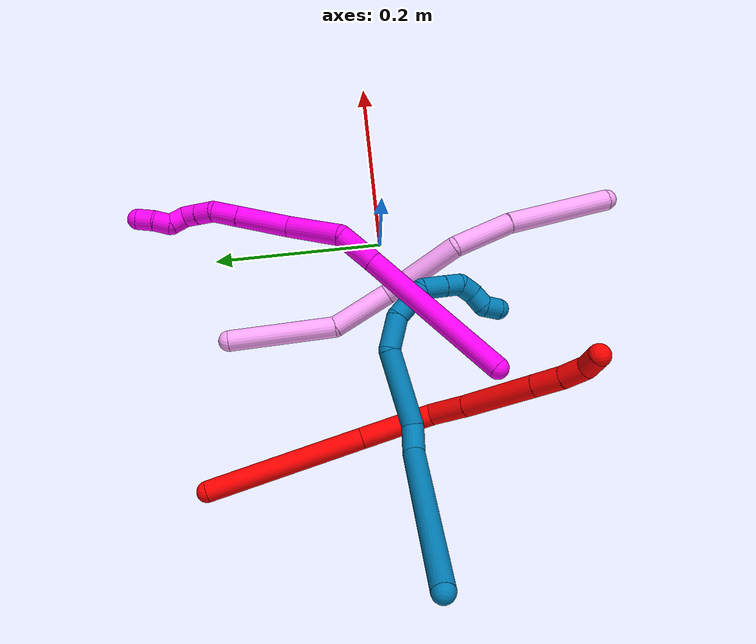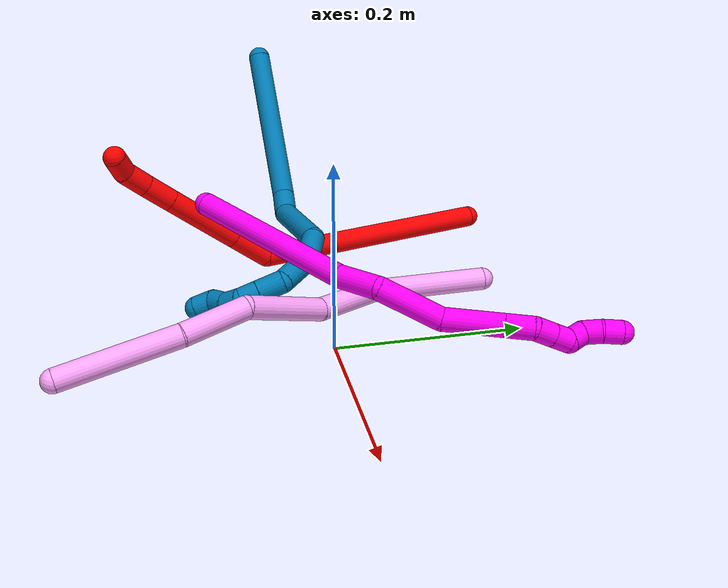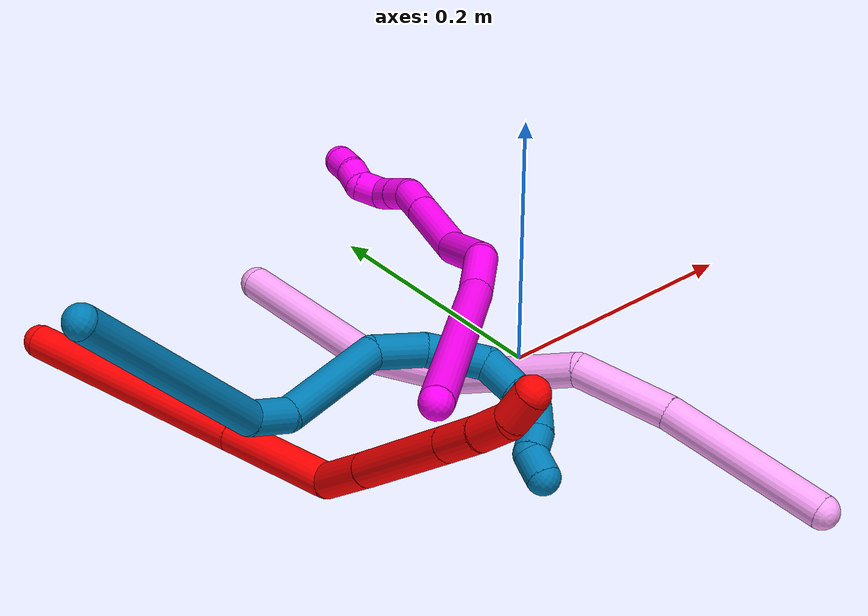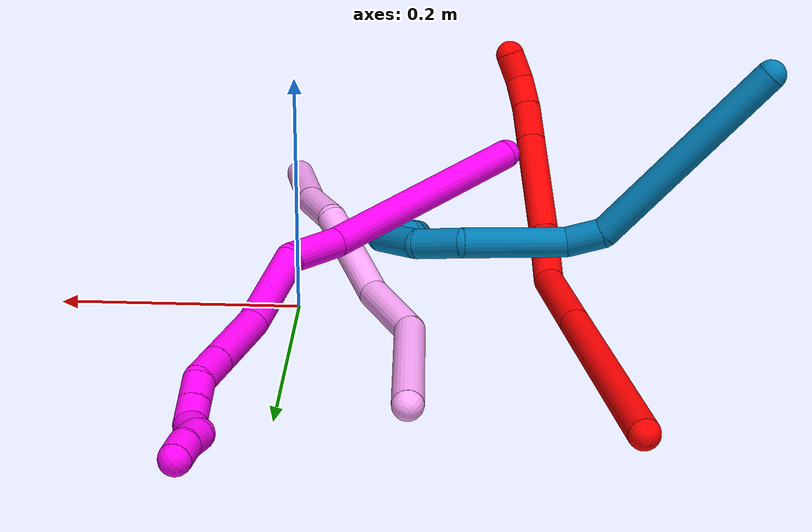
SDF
<sdf version="1.7">
 <world name="default">
  <model name="2">
   <static>0</static>
   <link name="2">
    <collision name="collision-cylinder-e_1_1_4">
     <pose>0.01626 -0.006768 -0.091686 3.06791 0.175052 2.34627</pose>
     <geometry><cylinder><radius>0.0125</radius><length>0.186725</length></cylinder></geometry>
     <surface>
      <friction><ode><mu>1.16</mu><mu2>1.16</mu2><slip1>0</slip1><slip2>0</slip2></ode></friction>
      <contact><ode><kp>1e+06</kp><kd>1</kd><max_vel>0</max_vel><min_depth>0.001</min_depth></ode></contact>
     </surface>
    </collision>
    <visual name="visual-cylinder-e_1_1_4">
     <pose>0.01626 -0.006768 -0.091686 3.06791 0.175052 2.34627</pose>
     <geometry><cylinder><radius>0.0125</radius><length>0.186725</length></cylinder></geometry>
     <material><ambient>1 0 0 1</ambient></material>
    </visual>
    <collision name="collision-cylinder-e_2_4_5">
     <pose>0.039907 -0.016698 -0.225477 3.06665 0.173208 2.32635</pose>
     <geometry><cylinder><radius>0.0125</radius><length>0.08573</length></cylinder></geometry>
     <surface>
      <friction><ode><mu>1.16</mu><mu2>1.16</mu2><slip1>0</slip1><slip2>0</slip2></ode></friction>
      <contact><ode><kp>1e+06</kp><kd>1</kd><max_vel>0</max_vel><min_depth>0.001</min_depth></ode></contact>
     </surface>
    </collision>
    <visual name="visual-cylinder-e_2_4_5">
     <pose>0.039907 -0.016698 -0.225477 3.06665 0.173208 2.32635</pose>
     <geometry><cylinder><radius>0.0125</radius><length>0.08573</length></cylinder></geometry>
     <material><ambient>1 0 0 1</ambient></material>
    </visual>
    <collision name="collision-cylinder-e_3_5_6">
     <pose>0.052917 -0.03618 -0.284648 2.37848 0.233735 0.56934</pose>
     <geometry><cylinder><radius>0.0125</radius><length>0.048547</length></cylinder></geometry>
     <surface>
      <friction><ode><mu>1.16</mu><mu2>1.16</mu2><slip1>0</slip1><slip2>0</slip2></ode></friction>
      <contact><ode><kp>1e+06</kp><kd>1</kd><max_vel>0</max_vel><min_depth>0.001</min_depth></ode></contact>
     </surface>
    </collision>
    <visual name="visual-cylinder-e_3_5_6">
     <pose>0.052917 -0.03618 -0.284648 2.37848 0.233735 0.56934</pose>
     <geometry><cylinder><radius>0.0125</radius><length>0.048547</length></cylinder></geometry>
     <material><ambient>1 0 0 1</ambient></material>
    </visual>
    <collision name="collision-cylinder-e_4_6_7">
     <pose>0.070531 -0.082741 -0.333146 2.37552 0.268318 0.646439</pose>
     <geometry><cylinder><radius>0.0125</radius><length>0.090472</length></cylinder></geometry>
     <surface>
      <friction><ode><mu>1.16</mu><mu2>1.16</mu2><slip1>0</slip1><slip2>0</slip2></ode></friction>
      <contact><ode><kp>1e+06</kp><kd>1</kd><max_vel>0</max_vel><min_depth>0.001</min_depth></ode></contact>
     </surface>
    </collision>
    <visual name="visual-cylinder-e_4_6_7">
     <pose>0.070531 -0.082741 -0.333146 2.37552 0.268318 0.646439</pose>
     <geometry><cylinder><radius>0.0125</radius><length>0.090472</length></cylinder></geometry>
     <material><ambient>1 0 0 1</ambient></material>
    </visual>
    <collision name="collision-cylinder-e_5_7_8">
     <pose>0.087124 -0.124623 -0.376558 2.3705 0.268718 0.643004</pose>
     <geometry><cylinder><radius>0.0125</radius><length>0.034652</length></cylinder></geometry>
     <surface>
      <friction><ode><mu>1.16</mu><mu2>1.16</mu2><slip1>0</slip1><slip2>0</slip2></ode></friction>
      <contact><ode><kp>1e+06</kp><kd>1</kd><max_vel>0</max_vel><min_depth>0.001</min_depth></ode></contact>
     </surface>
    </collision>
    <visual name="visual-cylinder-e_5_7_8">
     <pose>0.087124 -0.124623 -0.376558 2.3705 0.268718 0.643004</pose>
     <geometry><cylinder><radius>0.0125</radius><length>0.034652</length></cylinder></geometry>
     <material><ambient>1 0 0 1</ambient></material>
    </visual>
    <collision name="collision-cylinder-e_6_8_9">
     <pose>0.097031 -0.145882 -0.39799 2.34756 0.374961 0.849797</pose>
     <geometry><cylinder><radius>0.0125</radius><length>0.028984</length></cylinder></geometry>
     <surface>
      <friction><ode><mu>1.16</mu><mu2>1.16</mu2><slip1>0</slip1><slip2>0</slip2></ode></friction>
      <contact><ode><kp>1e+06</kp><kd>1</kd><max_vel>0</max_vel><min_depth>0.001</min_depth></ode></contact>
     </surface>
    </collision>
    <visual name="visual-cylinder-e_6_8_9">
     <pose>0.097031 -0.145882 -0.39799 2.34756 0.374961 0.849797</pose>
     <geometry><cylinder><radius>0.0125</radius><length>0.028984</length></cylinder></geometry>
     <material><ambient>1 0 0 1</ambient></material>
    </visual>
    <collision name="collision-cylinder-e_7_9_2">
     <pose>0.109513 -0.165003 -0.411062 1.9347 0.61435 0.862707</pose>
     <geometry><cylinder><radius>0.0125</radius><length>0.02489</length></cylinder></geometry>
     <surface>
      <friction><ode><mu>1.16</mu><mu2>1.16</mu2><slip1>0</slip1><slip2>0</slip2></ode></friction>
      <contact><ode><kp>1e+06</kp><kd>1</kd><max_vel>0</max_vel><min_depth>0.001</min_depth></ode></contact>
     </surface>
    </collision>
    <visual name="visual-cylinder-e_7_9_2">
     <pose>0.109513 -0.165003 -0.411062 1.9347 0.61435 0.862707</pose>
     <geometry><cylinder><radius>0.0125</radius><length>0.02489</length></cylinder></geometry>
     <material><ambient>1 0 0 1</ambient></material>
    </visual>
    <collision name="collision-sphere-2">
     <pose>0.116686 -0.174506 -0.414681 0 -0 0</pose>
     <geometry><sphere><radius>0.0125</radius></sphere></geometry>
     <surface>
      <friction><ode><mu>1.16</mu><mu2>1.16</mu2><slip1>0</slip1><slip2>0</slip2></ode></friction>
      <contact><ode><kp>1e+06</kp><kd>1</kd><max_vel>0</max_vel><min_depth>0.001</min_depth></ode></contact>
     </surface>
    </collision>
    <visual name="visual-sphere-2">
     <pose>0.116686 -0.174506 -0.414681 0 -0 0</pose>
     <geometry><sphere><radius>0.0125</radius></sphere></geometry>
     <material><ambient>1 0 0 1</ambient></material>
    </visual>
    <collision name="collision-sphere-9">
     <pose>0.102339 -0.155499 -0.407442 0 -0 0</pose>
     <geometry><sphere><radius>0.0125</radius></sphere></geometry>
     <surface>
      <friction><ode><mu>1.16</mu><mu2>1.16</mu2><slip1>0</slip1><slip2>0</slip2></ode></friction>
      <contact><ode><kp>1e+06</kp><kd>1</kd><max_vel>0</max_vel><min_depth>0.001</min_depth></ode></contact>
     </surface>
    </collision>
    <visual name="visual-sphere-9">
     <pose>0.102339 -0.155499 -0.407442 0 -0 0</pose>
     <geometry><sphere><radius>0.0125</radius></sphere></geometry>
     <material><ambient>1 0 0 1</ambient></material>
    </visual>
    <collision name="collision-sphere-4">
     <pose>0.03252 -0.013536 -0.183372 0 -0 0</pose>
     <geometry><sphere><radius>0.0125</radius></sphere></geometry>
     <surface>
      <friction><ode><mu>1.16</mu><mu2>1.16</mu2><slip1>0</slip1><slip2>0</slip2></ode></friction>
      <contact><ode><kp>1e+06</kp><kd>1</kd><max_vel>0</max_vel><min_depth>0.001</min_depth></ode></contact>
     </surface>
    </collision>
    <visual name="visual-sphere-4">
     <pose>0.03252 -0.013536 -0.183372 0 -0 0</pose>
     <geometry><sphere><radius>0.0125</radius></sphere></geometry>
     <material><ambient>1 0 0 1</ambient></material>
    </visual>
    <collision name="collision-sphere-1">
     <geometry><sphere><radius>0.0125</radius></sphere></geometry>
     <surface>
      <friction><ode><mu>1.16</mu><mu2>1.16</mu2><slip1>0</slip1><slip2>0</slip2></ode></friction>
      <contact><ode><kp>1e+06</kp><kd>1</kd><max_vel>0</max_vel><min_depth>0.001</min_depth></ode></contact>
     </surface>
    </collision>
    <visual name="visual-sphere-1">
     <geometry><sphere><radius>0.0125</radius></sphere></geometry>
     <material><ambient>1 0 0 1</ambient></material>
    </visual>
    <collision name="collision-sphere-8">
     <pose>0.091724 -0.136265 -0.388537 0 -0 0</pose>
     <geometry><sphere><radius>0.0125</radius></sphere></geometry>
     <surface>
      <friction><ode><mu>1.16</mu><mu2>1.16</mu2><slip1>0</slip1><slip2>0</slip2></ode></friction>
      <contact><ode><kp>1e+06</kp><kd>1</kd><max_vel>0</max_vel><min_depth>0.001</min_depth></ode></contact>
     </surface>
    </collision>
    <visual name="visual-sphere-8">
     <pose>0.091724 -0.136265 -0.388537 0 -0 0</pose>
     <geometry><sphere><radius>0.0125</radius></sphere></geometry>
     <material><ambient>1 0 0 1</ambient></material>
    </visual>
    <collision name="collision-sphere-5">
     <pose>0.047295 -0.019859 -0.267583 0 -0 0</pose>
     <geometry><sphere><radius>0.0125</radius></sphere></geometry>
     <surface>
      <friction><ode><mu>1.16</mu><mu2>1.16</mu2><slip1>0</slip1><slip2>0</slip2></ode></friction>
      <contact><ode><kp>1e+06</kp><kd>1</kd><max_vel>0</max_vel><min_depth>0.001</min_depth></ode></contact>
     </surface>
    </collision>
    <visual name="visual-sphere-5">
     <pose>0.047295 -0.019859 -0.267583 0 -0 0</pose>
     <geometry><sphere><radius>0.0125</radius></sphere></geometry>
     <material><ambient>1 0 0 1</ambient></material>
    </visual>
    <collision name="collision-sphere-6">
     <pose>0.058539 -0.052501 -0.301713 0 -0 0</pose>
     <geometry><sphere><radius>0.0125</radius></sphere></geometry>
     <surface>
      <friction><ode><mu>1.16</mu><mu2>1.16</mu2><slip1>0</slip1><slip2>0</slip2></ode></friction>
      <contact><ode><kp>1e+06</kp><kd>1</kd><max_vel>0</max_vel><min_depth>0.001</min_depth></ode></contact>
     </surface>
    </collision>
    <visual name="visual-sphere-6">
     <pose>0.058539 -0.052501 -0.301713 0 -0 0</pose>
     <geometry><sphere><radius>0.0125</radius></sphere></geometry>
     <material><ambient>1 0 0 1</ambient></material>
    </visual>
    <collision name="collision-sphere-7">
     <pose>0.082524 -0.112982 -0.364578 0 -0 0</pose>
     <geometry><sphere><radius>0.0125</radius></sphere></geometry>
     <surface>
      <friction><ode><mu>1.16</mu><mu2>1.16</mu2><slip1>0</slip1><slip2>0</slip2></ode></friction>
      <contact><ode><kp>1e+06</kp><kd>1</kd><max_vel>0</max_vel><min_depth>0.001</min_depth></ode></contact>
     </surface>
    </collision>
    <visual name="visual-sphere-7">
     <pose>0.082524 -0.112982 -0.364578 0 -0 0</pose>
     <geometry><sphere><radius>0.0125</radius></sphere></geometry>
     <material><ambient>1 0 0 1</ambient></material>
    </visual>
    <inertial>
     <pose>0.047929 -0.049182 -0.230449 0 -0 0</pose>
     <mass>0.5</mass>
     <inertia>
      <ixx>0.000136</ixx>
      <ixy>0</ixy>
      <ixz>0</ixz>
      <iyy>0.000852</iyy>
      <iyz>0</iyz>
      <izz>-5.9e-05</izz>
     </inertia>
    </inertial>
   </link>
   <pose>-0.270247 0.227419 0.012813 -1.4391 -0.289207 0.040426</pose>
  </model>
  <model name="4">
   <static>0</static>
   <link name="4">
    <collision name="collision-cylinder-e_1_1_4">
     <pose>-0.001891 -0.026856 0.057351 0.437941 -0.029851 -0.006643</pose>
     <geometry><cylinder><radius>0.0125</radius><length>0.126711</length></cylinder></geometry>
     <surface>
      <friction><ode><mu>1.16</mu><mu2>1.16</mu2><slip1>0</slip1><slip2>0</slip2></ode></friction>
      <contact><ode><kp>1e+06</kp><kd>1</kd><max_vel>0</max_vel><min_depth>0.001</min_depth></ode></contact>
     </surface>
    </collision>
    <visual name="visual-cylinder-e_1_1_4">
     <pose>-0.001891 -0.026856 0.057351 0.437941 -0.029851 -0.006643</pose>
     <geometry><cylinder><radius>0.0125</radius><length>0.126711</length></cylinder></geometry>
     <material><ambient>1 0.65098 0.996078 1</ambient></material>
    </visual>
    <collision name="collision-cylinder-e_2_4_5">
     <pose>0.002531 -0.080285 0.139243 0.825148 0.172783 0.075779</pose>
     <geometry><cylinder><radius>0.0125</radius><length>0.073437</length></cylinder></geometry>
     <surface>
      <friction><ode><mu>1.16</mu><mu2>1.16</mu2><slip1>0</slip1><slip2>0</slip2></ode></friction>
      <contact><ode><kp>1e+06</kp><kd>1</kd><max_vel>0</max_vel><min_depth>0.001</min_depth></ode></contact>
     </surface>
    </collision>
    <visual name="visual-cylinder-e_2_4_5">
     <pose>0.002531 -0.080285 0.139243 0.825148 0.172783 0.075779</pose>
     <geometry><cylinder><radius>0.0125</radius><length>0.073437</length></cylinder></geometry>
     <material><ambient>1 0.65098 0.996078 1</ambient></material>
    </visual>
    <collision name="collision-cylinder-e_3_5_6">
     <pose>0.030917 -0.134134 0.198111 0.671428 0.466401 0.165375</pose>
     <geometry><cylinder><radius>0.0125</radius><length>0.098173</length></cylinder></geometry>
     <surface>
      <friction><ode><mu>1.16</mu><mu2>1.16</mu2><slip1>0</slip1><slip2>0</slip2></ode></friction>
      <contact><ode><kp>1e+06</kp><kd>1</kd><max_vel>0</max_vel><min_depth>0.001</min_depth></ode></contact>
     </surface>
    </collision>
    <visual name="visual-cylinder-e_3_5_6">
     <pose>0.030917 -0.134134 0.198111 0.671428 0.466401 0.165375</pose>
     <geometry><cylinder><radius>0.0125</radius><length>0.098173</length></cylinder></geometry>
     <material><ambient>1 0.65098 0.996078 1</ambient></material>
    </visual>
    <collision name="collision-cylinder-e_4_6_7">
     <pose>0.051899 -0.187084 0.258112 0.785406 -0.030034 -0.012441</pose>
     <geometry><cylinder><radius>0.0125</radius><length>0.072651</length></cylinder></geometry>
     <surface>
      <friction><ode><mu>1.16</mu><mu2>1.16</mu2><slip1>0</slip1><slip2>0</slip2></ode></friction>
      <contact><ode><kp>1e+06</kp><kd>1</kd><max_vel>0</max_vel><min_depth>0.001</min_depth></ode></contact>
     </surface>
    </collision>
    <visual name="visual-cylinder-e_4_6_7">
     <pose>0.051899 -0.187084 0.258112 0.785406 -0.030034 -0.012441</pose>
     <geometry><cylinder><radius>0.0125</radius><length>0.072651</length></cylinder></geometry>
     <material><ambient>1 0.65098 0.996078 1</ambient></material>
    </visual>
    <collision name="collision-cylinder-e_5_7_2">
     <pose>0.043062 -0.25144 0.334832 0.648459 -0.120365 -0.040497</pose>
     <geometry><cylinder><radius>0.0125</radius><length>0.129026</length></cylinder></geometry>
     <surface>
      <friction><ode><mu>1.16</mu><mu2>1.16</mu2><slip1>0</slip1><slip2>0</slip2></ode></friction>
      <contact><ode><kp>1e+06</kp><kd>1</kd><max_vel>0</max_vel><min_depth>0.001</min_depth></ode></contact>
     </surface>
    </collision>
    <visual name="visual-cylinder-e_5_7_2">
     <pose>0.043062 -0.25144 0.334832 0.648459 -0.120365 -0.040497</pose>
     <geometry><cylinder><radius>0.0125</radius><length>0.129026</length></cylinder></geometry>
     <material><ambient>1 0.65098 0.996078 1</ambient></material>
    </visual>
    <collision name="collision-sphere-2">
     <pose>0.035315 -0.290122 0.385878 0 -0 0</pose>
     <geometry><sphere><radius>0.0125</radius></sphere></geometry>
     <surface>
      <friction><ode><mu>1.16</mu><mu2>1.16</mu2><slip1>0</slip1><slip2>0</slip2></ode></friction>
      <contact><ode><kp>1e+06</kp><kd>1</kd><max_vel>0</max_vel><min_depth>0.001</min_depth></ode></contact>
     </surface>
    </collision>
    <visual name="visual-sphere-2">
     <pose>0.035315 -0.290122 0.385878 0 -0 0</pose>
     <geometry><sphere><radius>0.0125</radius></sphere></geometry>
     <material><ambient>1 0.65098 0.996078 1</ambient></material>
    </visual>
    <collision name="collision-sphere-7">
     <pose>0.050808 -0.212759 0.283786 0 -0 0</pose>
     <geometry><sphere><radius>0.0125</radius></sphere></geometry>
     <surface>
      <friction><ode><mu>1.16</mu><mu2>1.16</mu2><slip1>0</slip1><slip2>0</slip2></ode></friction>
      <contact><ode><kp>1e+06</kp><kd>1</kd><max_vel>0</max_vel><min_depth>0.001</min_depth></ode></contact>
     </surface>
    </collision>
    <visual name="visual-sphere-7">
     <pose>0.050808 -0.212759 0.283786 0 -0 0</pose>
     <geometry><sphere><radius>0.0125</radius></sphere></geometry>
     <material><ambient>1 0.65098 0.996078 1</ambient></material>
    </visual>
    <collision name="collision-sphere-6">
     <pose>0.05299 -0.16141 0.232438 0 -0 0</pose>
     <geometry><sphere><radius>0.0125</radius></sphere></geometry>
     <surface>
      <friction><ode><mu>1.16</mu><mu2>1.16</mu2><slip1>0</slip1><slip2>0</slip2></ode></friction>
      <contact><ode><kp>1e+06</kp><kd>1</kd><max_vel>0</max_vel><min_depth>0.001</min_depth></ode></contact>
     </surface>
    </collision>
    <visual name="visual-sphere-6">
     <pose>0.05299 -0.16141 0.232438 0 -0 0</pose>
     <geometry><sphere><radius>0.0125</radius></sphere></geometry>
     <material><ambient>1 0.65098 0.996078 1</ambient></material>
    </visual>
    <collision name="collision-sphere-5">
     <pose>0.008844 -0.106859 0.163784 0 -0 0</pose>
     <geometry><sphere><radius>0.0125</radius></sphere></geometry>
     <surface>
      <friction><ode><mu>1.16</mu><mu2>1.16</mu2><slip1>0</slip1><slip2>0</slip2></ode></friction>
      <contact><ode><kp>1e+06</kp><kd>1</kd><max_vel>0</max_vel><min_depth>0.001</min_depth></ode></contact>
     </surface>
    </collision>
    <visual name="visual-sphere-5">
     <pose>0.008844 -0.106859 0.163784 0 -0 0</pose>
     <geometry><sphere><radius>0.0125</radius></sphere></geometry>
     <material><ambient>1 0.65098 0.996078 1</ambient></material>
    </visual>
    <collision name="collision-sphere-1">
     <geometry><sphere><radius>0.0125</radius></sphere></geometry>
     <surface>
      <friction><ode><mu>1.16</mu><mu2>1.16</mu2><slip1>0</slip1><slip2>0</slip2></ode></friction>
      <contact><ode><kp>1e+06</kp><kd>1</kd><max_vel>0</max_vel><min_depth>0.001</min_depth></ode></contact>
     </surface>
    </collision>
    <visual name="visual-sphere-1">
     <geometry><sphere><radius>0.0125</radius></sphere></geometry>
     <material><ambient>1 0.65098 0.996078 1</ambient></material>
    </visual>
    <collision name="collision-sphere-4">
     <pose>-0.003782 -0.053711 0.114702 0 -0 0</pose>
     <geometry><sphere><radius>0.0125</radius></sphere></geometry>
     <surface>
      <friction><ode><mu>1.16</mu><mu2>1.16</mu2><slip1>0</slip1><slip2>0</slip2></ode></friction>
      <contact><ode><kp>1e+06</kp><kd>1</kd><max_vel>0</max_vel><min_depth>0.001</min_depth></ode></contact>
     </surface>
    </collision>
    <visual name="visual-sphere-4">
     <pose>-0.003782 -0.053711 0.114702 0 -0 0</pose>
     <geometry><sphere><radius>0.0125</radius></sphere></geometry>
     <material><ambient>1 0.65098 0.996078 1</ambient></material>
    </visual>
    <inertial>
     <pose>0.024616 -0.137003 0.197793 0 -0 0</pose>
     <mass>0.5</mass>
     <inertia>
      <ixx>0.000508</ixx>
      <ixy>0</ixy>
      <ixz>0</ixz>
      <iyy>0.000405</iyy>
      <iyz>0</iyz>
      <izz>0.000296</izz>
     </inertia>
    </inertial>
   </link>
   <pose>-0.099204 0.18983 0.011503 1.07205 -1.11497 0.096641</pose>
  </model>
  <model name="9">
   <static>0</static>
   <link name="9">
    <collision name="collision-cylinder-e_1_1_4">
     <pose>0.003339 0.020527 -0.090585 -2.91875 0.035939 -0.318525</pose>
     <geometry><cylinder><radius>0.0125</radius><length>0.185883</length></cylinder></geometry>
     <surface>
      <friction><ode><mu>1.16</mu><mu2>1.16</mu2><slip1>0</slip1><slip2>0</slip2></ode></friction>
      <contact><ode><kp>1e+06</kp><kd>1</kd><max_vel>0</max_vel><min_depth>0.001</min_depth></ode></contact>
     </surface>
    </collision>
    <visual name="visual-cylinder-e_1_1_4">
     <pose>0.003339 0.020527 -0.090585 -2.91875 0.035939 -0.318525</pose>
     <geometry><cylinder><radius>0.0125</radius><length>0.185883</length></cylinder></geometry>
     <material><ambient>0 0.490196 0.709804 1</ambient></material>
    </visual>
    <collision name="collision-cylinder-e_2_4_5">
     <pose>0.014772 0.041871 -0.195069 -3.08291 0.526534 -2.92464</pose>
     <geometry><cylinder><radius>0.0125</radius><length>0.032209</length></cylinder></geometry>
     <surface>
      <friction><ode><mu>1.16</mu><mu2>1.16</mu2><slip1>0</slip1><slip2>0</slip2></ode></friction>
      <contact><ode><kp>1e+06</kp><kd>1</kd><max_vel>0</max_vel><min_depth>0.001</min_depth></ode></contact>
     </surface>
    </collision>
    <visual name="visual-cylinder-e_2_4_5">
     <pose>0.014772 0.041871 -0.195069 -3.08291 0.526534 -2.92464</pose>
     <geometry><cylinder><radius>0.0125</radius><length>0.032209</length></cylinder></geometry>
     <material><ambient>0 0.490196 0.709804 1</ambient></material>
    </visual>
    <collision name="collision-cylinder-e_3_5_6">
     <pose>0.057225 0.053485 -0.23386 -2.73229 0.902395 -2.33215</pose>
     <geometry><cylinder><radius>0.0125</radius><length>0.087562</length></cylinder></geometry>
     <surface>
      <friction><ode><mu>1.16</mu><mu2>1.16</mu2><slip1>0</slip1><slip2>0</slip2></ode></friction>
      <contact><ode><kp>1e+06</kp><kd>1</kd><max_vel>0</max_vel><min_depth>0.001</min_depth></ode></contact>
     </surface>
    </collision>
    <visual name="visual-cylinder-e_3_5_6">
     <pose>0.057225 0.053485 -0.23386 -2.73229 0.902395 -2.33215</pose>
     <geometry><cylinder><radius>0.0125</radius><length>0.087562</length></cylinder></geometry>
     <material><ambient>0 0.490196 0.709804 1</ambient></material>
    </visual>
    <collision name="collision-cylinder-e_4_6_7">
     <pose>0.102996 0.059877 -0.275135 2.87887 0.592083 2.32402</pose>
     <geometry><cylinder><radius>0.0125</radius><length>0.040893</length></cylinder></geometry>
     <surface>
      <friction><ode><mu>1.16</mu><mu2>1.16</mu2><slip1>0</slip1><slip2>0</slip2></ode></friction>
      <contact><ode><kp>1e+06</kp><kd>1</kd><max_vel>0</max_vel><min_depth>0.001</min_depth></ode></contact>
     </surface>
    </collision>
    <visual name="visual-cylinder-e_4_6_7">
     <pose>0.102996 0.059877 -0.275135 2.87887 0.592083 2.32402</pose>
     <geometry><cylinder><radius>0.0125</radius><length>0.040893</length></cylinder></geometry>
     <material><ambient>0 0.490196 0.709804 1</ambient></material>
    </visual>
    <collision name="collision-cylinder-e_5_7_8">
     <pose>0.12212 0.041551 -0.307449 2.42344 0.349605 0.879559</pose>
     <geometry><cylinder><radius>0.0125</radius><length>0.045034</length></cylinder></geometry>
     <surface>
      <friction><ode><mu>1.16</mu><mu2>1.16</mu2><slip1>0</slip1><slip2>0</slip2></ode></friction>
      <contact><ode><kp>1e+06</kp><kd>1</kd><max_vel>0</max_vel><min_depth>0.001</min_depth></ode></contact>
     </surface>
    </collision>
    <visual name="visual-cylinder-e_5_7_8">
     <pose>0.12212 0.041551 -0.307449 2.42344 0.349605 0.879559</pose>
     <geometry><cylinder><radius>0.0125</radius><length>0.045034</length></cylinder></geometry>
     <material><ambient>0 0.490196 0.709804 1</ambient></material>
    </visual>
    <collision name="collision-cylinder-e_6_8_9">
     <pose>0.126963 0.015305 -0.329732 2.04664 -0.204052 -0.33277</pose>
     <geometry><cylinder><radius>0.0125</radius><length>0.028321</length></cylinder></geometry>
     <surface>
      <friction><ode><mu>1.16</mu><mu2>1.16</mu2><slip1>0</slip1><slip2>0</slip2></ode></friction>
      <contact><ode><kp>1e+06</kp><kd>1</kd><max_vel>0</max_vel><min_depth>0.001</min_depth></ode></contact>
     </surface>
    </collision>
    <visual name="visual-cylinder-e_6_8_9">
     <pose>0.126963 0.015305 -0.329732 2.04664 -0.204052 -0.33277</pose>
     <geometry><cylinder><radius>0.0125</radius><length>0.028321</length></cylinder></geometry>
     <material><ambient>0 0.490196 0.709804 1</ambient></material>
    </visual>
    <collision name="collision-cylinder-e_7_9_10">
     <pose>0.121889 -0.005705 -0.340539 2.04483 -0.222157 -0.361192</pose>
     <geometry><cylinder><radius>0.0125</radius><length>0.020012</length></cylinder></geometry>
     <surface>
      <friction><ode><mu>1.16</mu><mu2>1.16</mu2><slip1>0</slip1><slip2>0</slip2></ode></friction>
      <contact><ode><kp>1e+06</kp><kd>1</kd><max_vel>0</max_vel><min_depth>0.001</min_depth></ode></contact>
     </surface>
    </collision>
    <visual name="visual-cylinder-e_7_9_10">
     <pose>0.121889 -0.005705 -0.340539 2.04483 -0.222157 -0.361192</pose>
     <geometry><cylinder><radius>0.0125</radius><length>0.020012</length></cylinder></geometry>
     <material><ambient>0 0.490196 0.709804 1</ambient></material>
    </visual>
    <collision name="collision-cylinder-e_8_10_11">
     <pose>0.11226 -0.021011 -0.346203 1.75137 -0.834276 -0.976851</pose>
     <geometry><cylinder><radius>0.0125</radius><length>0.020046</length></cylinder></geometry>
     <surface>
      <friction><ode><mu>1.16</mu><mu2>1.16</mu2><slip1>0</slip1><slip2>0</slip2></ode></friction>
      <contact><ode><kp>1e+06</kp><kd>1</kd><max_vel>0</max_vel><min_depth>0.001</min_depth></ode></contact>
     </surface>
    </collision>
    <visual name="visual-cylinder-e_8_10_11">
     <pose>0.11226 -0.021011 -0.346203 1.75137 -0.834276 -0.976851</pose>
     <geometry><cylinder><radius>0.0125</radius><length>0.020046</length></cylinder></geometry>
     <material><ambient>0 0.490196 0.709804 1</ambient></material>
    </visual>
    <collision name="collision-cylinder-e_9_11_12">
     <pose>0.09733 -0.033565 -0.344489 1.11288 -0.848562 -0.547816</pose>
     <geometry><cylinder><radius>0.0125</radius><length>0.020004</length></cylinder></geometry>
     <surface>
      <friction><ode><mu>1.16</mu><mu2>1.16</mu2><slip1>0</slip1><slip2>0</slip2></ode></friction>
      <contact><ode><kp>1e+06</kp><kd>1</kd><max_vel>0</max_vel><min_depth>0.001</min_depth></ode></contact>
     </surface>
    </collision>
    <visual name="visual-cylinder-e_9_11_12">
     <pose>0.09733 -0.033565 -0.344489 1.11288 -0.848562 -0.547816</pose>
     <geometry><cylinder><radius>0.0125</radius><length>0.020004</length></cylinder></geometry>
     <material><ambient>0 0.490196 0.709804 1</ambient></material>
    </visual>
    <collision name="collision-cylinder-e_10_12_2">
     <pose>0.085054 -0.047669 -0.344852 1.95308 -0.496331 -0.717505</pose>
     <geometry><cylinder><radius>0.0125</radius><length>0.020036</length></cylinder></geometry>
     <surface>
      <friction><ode><mu>1.16</mu><mu2>1.16</mu2><slip1>0</slip1><slip2>0</slip2></ode></friction>
      <contact><ode><kp>1e+06</kp><kd>1</kd><max_vel>0</max_vel><min_depth>0.001</min_depth></ode></contact>
     </surface>
    </collision>
    <visual name="visual-cylinder-e_10_12_2">
     <pose>0.085054 -0.047669 -0.344852 1.95308 -0.496331 -0.717505</pose>
     <geometry><cylinder><radius>0.0125</radius><length>0.020036</length></cylinder></geometry>
     <material><ambient>0 0.490196 0.709804 1</ambient></material>
    </visual>
    <collision name="collision-sphere-2">
     <pose>0.080284 -0.055843 -0.348139 0 -0 0</pose>
     <geometry><sphere><radius>0.0125</radius></sphere></geometry>
     <surface>
      <friction><ode><mu>1.16</mu><mu2>1.16</mu2><slip1>0</slip1><slip2>0</slip2></ode></friction>
      <contact><ode><kp>1e+06</kp><kd>1</kd><max_vel>0</max_vel><min_depth>0.001</min_depth></ode></contact>
     </surface>
    </collision>
    <visual name="visual-sphere-2">
     <pose>0.080284 -0.055843 -0.348139 0 -0 0</pose>
     <geometry><sphere><radius>0.0125</radius></sphere></geometry>
     <material><ambient>0 0.490196 0.709804 1</ambient></material>
    </visual>
    <collision name="collision-sphere-12">
     <pose>0.089825 -0.039496 -0.341566 0 -0 0</pose>
     <geometry><sphere><radius>0.0125</radius></sphere></geometry>
     <surface>
      <friction><ode><mu>1.16</mu><mu2>1.16</mu2><slip1>0</slip1><slip2>0</slip2></ode></friction>
      <contact><ode><kp>1e+06</kp><kd>1</kd><max_vel>0</max_vel><min_depth>0.001</min_depth></ode></contact>
     </surface>
    </collision>
    <visual name="visual-sphere-12">
     <pose>0.089825 -0.039496 -0.341566 0 -0 0</pose>
     <geometry><sphere><radius>0.0125</radius></sphere></geometry>
     <material><ambient>0 0.490196 0.709804 1</ambient></material>
    </visual>
    <collision name="collision-sphere-11">
     <pose>0.104835 -0.027634 -0.347412 0 -0 0</pose>
     <geometry><sphere><radius>0.0125</radius></sphere></geometry>
     <surface>
      <friction><ode><mu>1.16</mu><mu2>1.16</mu2><slip1>0</slip1><slip2>0</slip2></ode></friction>
      <contact><ode><kp>1e+06</kp><kd>1</kd><max_vel>0</max_vel><min_depth>0.001</min_depth></ode></contact>
     </surface>
    </collision>
    <visual name="visual-sphere-11">
     <pose>0.104835 -0.027634 -0.347412 0 -0 0</pose>
     <geometry><sphere><radius>0.0125</radius></sphere></geometry>
     <material><ambient>0 0.490196 0.709804 1</ambient></material>
    </visual>
    <collision name="collision-sphere-10">
     <pose>0.119685 -0.014388 -0.344994 0 -0 0</pose>
     <geometry><sphere><radius>0.0125</radius></sphere></geometry>
     <surface>
      <friction><ode><mu>1.16</mu><mu2>1.16</mu2><slip1>0</slip1><slip2>0</slip2></ode></friction>
      <contact><ode><kp>1e+06</kp><kd>1</kd><max_vel>0</max_vel><min_depth>0.001</min_depth></ode></contact>
     </surface>
    </collision>
    <visual name="visual-sphere-10">
     <pose>0.119685 -0.014388 -0.344994 0 -0 0</pose>
     <geometry><sphere><radius>0.0125</radius></sphere></geometry>
     <material><ambient>0 0.490196 0.709804 1</ambient></material>
    </visual>
    <collision name="collision-sphere-9">
     <pose>0.124094 0.002979 -0.336084 0 -0 0</pose>
     <geometry><sphere><radius>0.0125</radius></sphere></geometry>
     <surface>
      <friction><ode><mu>1.16</mu><mu2>1.16</mu2><slip1>0</slip1><slip2>0</slip2></ode></friction>
      <contact><ode><kp>1e+06</kp><kd>1</kd><max_vel>0</max_vel><min_depth>0.001</min_depth></ode></contact>
     </surface>
    </collision>
    <visual name="visual-sphere-9">
     <pose>0.124094 0.002979 -0.336084 0 -0 0</pose>
     <geometry><sphere><radius>0.0125</radius></sphere></geometry>
     <material><ambient>0 0.490196 0.709804 1</ambient></material>
    </visual>
    <collision name="collision-sphere-4">
     <pose>0.006679 0.041054 -0.18117 0 -0 0</pose>
     <geometry><sphere><radius>0.0125</radius></sphere></geometry>
     <surface>
      <friction><ode><mu>1.16</mu><mu2>1.16</mu2><slip1>0</slip1><slip2>0</slip2></ode></friction>
      <contact><ode><kp>1e+06</kp><kd>1</kd><max_vel>0</max_vel><min_depth>0.001</min_depth></ode></contact>
     </surface>
    </collision>
    <visual name="visual-sphere-4">
     <pose>0.006679 0.041054 -0.18117 0 -0 0</pose>
     <geometry><sphere><radius>0.0125</radius></sphere></geometry>
     <material><ambient>0 0.490196 0.709804 1</ambient></material>
    </visual>
    <collision name="collision-sphere-1">
     <geometry><sphere><radius>0.0125</radius></sphere></geometry>
     <surface>
      <friction><ode><mu>1.16</mu><mu2>1.16</mu2><slip1>0</slip1><slip2>0</slip2></ode></friction>
      <contact><ode><kp>1e+06</kp><kd>1</kd><max_vel>0</max_vel><min_depth>0.001</min_depth></ode></contact>
     </surface>
    </collision>
    <visual name="visual-sphere-1">
     <geometry><sphere><radius>0.0125</radius></sphere></geometry>
     <material><ambient>0 0.490196 0.709804 1</ambient></material>
    </visual>
    <collision name="collision-sphere-8">
     <pose>0.129833 0.027631 -0.32338 0 -0 0</pose>
     <geometry><sphere><radius>0.0125</radius></sphere></geometry>
     <surface>
      <friction><ode><mu>1.16</mu><mu2>1.16</mu2><slip1>0</slip1><slip2>0</slip2></ode></friction>
      <contact><ode><kp>1e+06</kp><kd>1</kd><max_vel>0</max_vel><min_depth>0.001</min_depth></ode></contact>
     </surface>
    </collision>
    <visual name="visual-sphere-8">
     <pose>0.129833 0.027631 -0.32338 0 -0 0</pose>
     <geometry><sphere><radius>0.0125</radius></sphere></geometry>
     <material><ambient>0 0.490196 0.709804 1</ambient></material>
    </visual>
    <collision name="collision-sphere-5">
     <pose>0.022865 0.042687 -0.208969 0 -0 0</pose>
     <geometry><sphere><radius>0.0125</radius></sphere></geometry>
     <surface>
      <friction><ode><mu>1.16</mu><mu2>1.16</mu2><slip1>0</slip1><slip2>0</slip2></ode></friction>
      <contact><ode><kp>1e+06</kp><kd>1</kd><max_vel>0</max_vel><min_depth>0.001</min_depth></ode></contact>
     </surface>
    </collision>
    <visual name="visual-sphere-5">
     <pose>0.022865 0.042687 -0.208969 0 -0 0</pose>
     <geometry><sphere><radius>0.0125</radius></sphere></geometry>
     <material><ambient>0 0.490196 0.709804 1</ambient></material>
    </visual>
    <collision name="collision-sphere-6">
     <pose>0.091585 0.064283 -0.258751 0 -0 0</pose>
     <geometry><sphere><radius>0.0125</radius></sphere></geometry>
     <surface>
      <friction><ode><mu>1.16</mu><mu2>1.16</mu2><slip1>0</slip1><slip2>0</slip2></ode></friction>
      <contact><ode><kp>1e+06</kp><kd>1</kd><max_vel>0</max_vel><min_depth>0.001</min_depth></ode></contact>
     </surface>
    </collision>
    <visual name="visual-sphere-6">
     <pose>0.091585 0.064283 -0.258751 0 -0 0</pose>
     <geometry><sphere><radius>0.0125</radius></sphere></geometry>
     <material><ambient>0 0.490196 0.709804 1</ambient></material>
    </visual>
    <collision name="collision-sphere-7">
     <pose>0.114407 0.055471 -0.291519 0 -0 0</pose>
     <geometry><sphere><radius>0.0125</radius></sphere></geometry>
     <surface>
      <friction><ode><mu>1.16</mu><mu2>1.16</mu2><slip1>0</slip1><slip2>0</slip2></ode></friction>
      <contact><ode><kp>1e+06</kp><kd>1</kd><max_vel>0</max_vel><min_depth>0.001</min_depth></ode></contact>
     </surface>
    </collision>
    <visual name="visual-sphere-7">
     <pose>0.114407 0.055471 -0.291519 0 -0 0</pose>
     <geometry><sphere><radius>0.0125</radius></sphere></geometry>
     <material><ambient>0 0.490196 0.709804 1</ambient></material>
    </visual>
    <inertial>
     <pose>0.05551 0.024878 -0.211178 0 -0 0</pose>
     <mass>0.5</mass>
     <inertia>
      <ixx>0.000311</ixx>
      <ixy>0</ixy>
      <ixz>0</ixz>
      <iyy>-0.000637</iyy>
      <iyz>0</iyz>
      <izz>-0.000219</izz>
     </inertia>
    </inertial>
   </link>
   <pose>-0.379011 -0.016872 0.204322 -0.248989 -0.71461 0.092664</pose>
  </model>
  <model name="10">
   <static>0</static>
   <link name="10">
    <collision name="collision-cylinder-e_1_1_4">
     <pose>0.046722 0.061297 -0.052706 -2.28097 0.524049 -1.05759</pose>
     <geometry><cylinder><radius>0.0125</radius><length>0.186743</length></cylinder></geometry>
     <surface>
      <friction><ode><mu>1.16</mu><mu2>1.16</mu2><slip1>0</slip1><slip2>0</slip2></ode></friction>
      <contact><ode><kp>1e+06</kp><kd>1</kd><max_vel>0</max_vel><min_depth>0.001</min_depth></ode></contact>
     </surface>
    </collision>
    <visual name="visual-cylinder-e_1_1_4">
     <pose>0.046722 0.061297 -0.052706 -2.28097 0.524049 -1.05759</pose>
     <geometry><cylinder><radius>0.0125</radius><length>0.186743</length></cylinder></geometry>
     <material><ambient>1 0 0.964706 1</ambient></material>
    </visual>
    <collision name="collision-cylinder-e_2_4_5">
     <pose>0.108007 0.138785 -0.115246 -2.11668 0.655388 -1.08709</pose>
     <geometry><cylinder><radius>0.0125</radius><length>0.047787</length></cylinder></geometry>
     <surface>
      <friction><ode><mu>1.16</mu><mu2>1.16</mu2><slip1>0</slip1><slip2>0</slip2></ode></friction>
      <contact><ode><kp>1e+06</kp><kd>1</kd><max_vel>0</max_vel><min_depth>0.001</min_depth></ode></contact>
     </surface>
    </collision>
    <visual name="visual-cylinder-e_2_4_5">
     <pose>0.108007 0.138785 -0.115246 -2.11668 0.655388 -1.08709</pose>
     <geometry><cylinder><radius>0.0125</radius><length>0.047787</length></cylinder></geometry>
     <material><ambient>1 0 0.964706 1</ambient></material>
    </visual>
    <collision name="collision-cylinder-e_3_5_6">
     <pose>0.125056 0.186389 -0.141071 -2.04162 0.070441 -0.114817</pose>
     <geometry><cylinder><radius>0.0125</radius><length>0.070674</length></cylinder></geometry>
     <surface>
      <friction><ode><mu>1.16</mu><mu2>1.16</mu2><slip1>0</slip1><slip2>0</slip2></ode></friction>
      <contact><ode><kp>1e+06</kp><kd>1</kd><max_vel>0</max_vel><min_depth>0.001</min_depth></ode></contact>
     </surface>
    </collision>
    <visual name="visual-cylinder-e_3_5_6">
     <pose>0.125056 0.186389 -0.141071 -2.04162 0.070441 -0.114817</pose>
     <geometry><cylinder><radius>0.0125</radius><length>0.070674</length></cylinder></geometry>
     <material><ambient>1 0 0.964706 1</ambient></material>
    </visual>
    <collision name="collision-cylinder-e_4_6_7">
     <pose>0.136998 0.247704 -0.162029 -1.73546 0.30238 -0.355716</pose>
     <geometry><cylinder><radius>0.0125</radius><length>0.063501</length></cylinder></geometry>
     <surface>
      <friction><ode><mu>1.16</mu><mu2>1.16</mu2><slip1>0</slip1><slip2>0</slip2></ode></friction>
      <contact><ode><kp>1e+06</kp><kd>1</kd><max_vel>0</max_vel><min_depth>0.001</min_depth></ode></contact>
     </surface>
    </collision>
    <visual name="visual-cylinder-e_4_6_7">
     <pose>0.136998 0.247704 -0.162029 -1.73546 0.30238 -0.355716</pose>
     <geometry><cylinder><radius>0.0125</radius><length>0.063501</length></cylinder></geometry>
     <material><ambient>1 0 0.964706 1</ambient></material>
    </visual>
    <collision name="collision-cylinder-e_5_7_8">
     <pose>0.150976 0.291751 -0.169352 -1.7357 0.305489 -0.359437</pose>
     <geometry><cylinder><radius>0.0125</radius><length>0.030076</length></cylinder></geometry>
     <surface>
      <friction><ode><mu>1.16</mu><mu2>1.16</mu2><slip1>0</slip1><slip2>0</slip2></ode></friction>
      <contact><ode><kp>1e+06</kp><kd>1</kd><max_vel>0</max_vel><min_depth>0.001</min_depth></ode></contact>
     </surface>
    </collision>
    <visual name="visual-cylinder-e_5_7_8">
     <pose>0.150976 0.291751 -0.169352 -1.7357 0.305489 -0.359437</pose>
     <geometry><cylinder><radius>0.0125</radius><length>0.030076</length></cylinder></geometry>
     <material><ambient>1 0 0.964706 1</ambient></material>
    </visual>
    <collision name="collision-cylinder-e_6_8_9">
     <pose>0.153958 0.315832 -0.174501 -1.8451 -0.148226 0.195428</pose>
     <geometry><cylinder><radius>0.0125</radius><length>0.020869</length></cylinder></geometry>
     <surface>
      <friction><ode><mu>1.16</mu><mu2>1.16</mu2><slip1>0</slip1><slip2>0</slip2></ode></friction>
      <contact><ode><kp>1e+06</kp><kd>1</kd><max_vel>0</max_vel><min_depth>0.001</min_depth></ode></contact>
     </surface>
    </collision>
    <visual name="visual-cylinder-e_6_8_9">
     <pose>0.153958 0.315832 -0.174501 -1.8451 -0.148226 0.195428</pose>
     <geometry><cylinder><radius>0.0125</radius><length>0.020869</length></cylinder></geometry>
     <material><ambient>1 0 0.964706 1</ambient></material>
    </visual>
    <collision name="collision-cylinder-e_7_9_10">
     <pose>0.150949 0.335357 -0.179984 -1.84401 -0.146349 0.192742</pose>
     <geometry><cylinder><radius>0.0125</radius><length>0.020136</length></cylinder></geometry>
     <surface>
      <friction><ode><mu>1.16</mu><mu2>1.16</mu2><slip1>0</slip1><slip2>0</slip2></ode></friction>
      <contact><ode><kp>1e+06</kp><kd>1</kd><max_vel>0</max_vel><min_depth>0.001</min_depth></ode></contact>
     </surface>
    </collision>
    <visual name="visual-cylinder-e_7_9_10">
     <pose>0.150949 0.335357 -0.179984 -1.84401 -0.146349 0.192742</pose>
     <geometry><cylinder><radius>0.0125</radius><length>0.020136</length></cylinder></geometry>
     <material><ambient>1 0 0.964706 1</ambient></material>
    </visual>
    <collision name="collision-cylinder-e_8_10_11">
     <pose>0.147994 0.353578 -0.177838 -1.06022 -0.149224 0.087561</pose>
     <geometry><cylinder><radius>0.0125</radius><length>0.020005</length></cylinder></geometry>
     <surface>
      <friction><ode><mu>1.16</mu><mu2>1.16</mu2><slip1>0</slip1><slip2>0</slip2></ode></friction>
      <contact><ode><kp>1e+06</kp><kd>1</kd><max_vel>0</max_vel><min_depth>0.001</min_depth></ode></contact>
     </surface>
    </collision>
    <visual name="visual-cylinder-e_8_10_11">
     <pose>0.147994 0.353578 -0.177838 -1.06022 -0.149224 0.087561</pose>
     <geometry><cylinder><radius>0.0125</radius><length>0.020005</length></cylinder></geometry>
     <material><ambient>1 0 0.964706 1</ambient></material>
    </visual>
    <collision name="collision-cylinder-e_9_11_12">
     <pose>0.150666 0.371316 -0.173105 -1.58181 0.428378 -0.432975</pose>
     <geometry><cylinder><radius>0.0125</radius><length>0.020028</length></cylinder></geometry>
     <surface>
      <friction><ode><mu>1.16</mu><mu2>1.16</mu2><slip1>0</slip1><slip2>0</slip2></ode></friction>
      <contact><ode><kp>1e+06</kp><kd>1</kd><max_vel>0</max_vel><min_depth>0.001</min_depth></ode></contact>
     </surface>
    </collision>
    <visual name="visual-cylinder-e_9_11_12">
     <pose>0.150666 0.371316 -0.173105 -1.58181 0.428378 -0.432975</pose>
     <geometry><cylinder><radius>0.0125</radius><length>0.020028</length></cylinder></geometry>
     <material><ambient>1 0 0.964706 1</ambient></material>
    </visual>
    <collision name="collision-cylinder-e_10_12_2">
     <pose>0.156959 0.390246 -0.174108 -1.66246 0.213018 -0.233319</pose>
     <geometry><cylinder><radius>0.0125</radius><length>0.020181</length></cylinder></geometry>
     <surface>
      <friction><ode><mu>1.16</mu><mu2>1.16</mu2><slip1>0</slip1><slip2>0</slip2></ode></friction>
      <contact><ode><kp>1e+06</kp><kd>1</kd><max_vel>0</max_vel><min_depth>0.001</min_depth></ode></contact>
     </surface>
    </collision>
    <visual name="visual-cylinder-e_10_12_2">
     <pose>0.156959 0.390246 -0.174108 -1.66246 0.213018 -0.233319</pose>
     <geometry><cylinder><radius>0.0125</radius><length>0.020181</length></cylinder></geometry>
     <material><ambient>1 0 0.964706 1</ambient></material>
    </visual>
    <collision name="collision-sphere-2">
     <pose>0.159093 0.400067 -0.175011 0 -0 0</pose>
     <geometry><sphere><radius>0.0125</radius></sphere></geometry>
     <surface>
      <friction><ode><mu>1.16</mu><mu2>1.16</mu2><slip1>0</slip1><slip2>0</slip2></ode></friction>
      <contact><ode><kp>1e+06</kp><kd>1</kd><max_vel>0</max_vel><min_depth>0.001</min_depth></ode></contact>
     </surface>
    </collision>
    <visual name="visual-sphere-2">
     <pose>0.159093 0.400067 -0.175011 0 -0 0</pose>
     <geometry><sphere><radius>0.0125</radius></sphere></geometry>
     <material><ambient>1 0 0.964706 1</ambient></material>
    </visual>
    <collision name="collision-sphere-12">
     <pose>0.154826 0.380425 -0.173205 0 -0 0</pose>
     <geometry><sphere><radius>0.0125</radius></sphere></geometry>
     <surface>
      <friction><ode><mu>1.16</mu><mu2>1.16</mu2><slip1>0</slip1><slip2>0</slip2></ode></friction>
      <contact><ode><kp>1e+06</kp><kd>1</kd><max_vel>0</max_vel><min_depth>0.001</min_depth></ode></contact>
     </surface>
    </collision>
    <visual name="visual-sphere-12">
     <pose>0.154826 0.380425 -0.173205 0 -0 0</pose>
     <geometry><sphere><radius>0.0125</radius></sphere></geometry>
     <material><ambient>1 0 0.964706 1</ambient></material>
    </visual>
    <collision name="collision-sphere-11">
     <pose>0.146507 0.362208 -0.173005 0 -0 0</pose>
     <geometry><sphere><radius>0.0125</radius></sphere></geometry>
     <surface>
      <friction><ode><mu>1.16</mu><mu2>1.16</mu2><slip1>0</slip1><slip2>0</slip2></ode></friction>
      <contact><ode><kp>1e+06</kp><kd>1</kd><max_vel>0</max_vel><min_depth>0.001</min_depth></ode></contact>
     </surface>
    </collision>
    <visual name="visual-sphere-11">
     <pose>0.146507 0.362208 -0.173005 0 -0 0</pose>
     <geometry><sphere><radius>0.0125</radius></sphere></geometry>
     <material><ambient>1 0 0.964706 1</ambient></material>
    </visual>
    <collision name="collision-sphere-10">
     <pose>0.149481 0.344948 -0.182672 0 -0 0</pose>
     <geometry><sphere><radius>0.0125</radius></sphere></geometry>
     <surface>
      <friction><ode><mu>1.16</mu><mu2>1.16</mu2><slip1>0</slip1><slip2>0</slip2></ode></friction>
      <contact><ode><kp>1e+06</kp><kd>1</kd><max_vel>0</max_vel><min_depth>0.001</min_depth></ode></contact>
     </surface>
    </collision>
    <visual name="visual-sphere-10">
     <pose>0.149481 0.344948 -0.182672 0 -0 0</pose>
     <geometry><sphere><radius>0.0125</radius></sphere></geometry>
     <material><ambient>1 0 0.964706 1</ambient></material>
    </visual>
    <collision name="collision-sphere-9">
     <pose>0.152417 0.325766 -0.177297 0 -0 0</pose>
     <geometry><sphere><radius>0.0125</radius></sphere></geometry>
     <surface>
      <friction><ode><mu>1.16</mu><mu2>1.16</mu2><slip1>0</slip1><slip2>0</slip2></ode></friction>
      <contact><ode><kp>1e+06</kp><kd>1</kd><max_vel>0</max_vel><min_depth>0.001</min_depth></ode></contact>
     </surface>
    </collision>
    <visual name="visual-sphere-9">
     <pose>0.152417 0.325766 -0.177297 0 -0 0</pose>
     <geometry><sphere><radius>0.0125</radius></sphere></geometry>
     <material><ambient>1 0 0.964706 1</ambient></material>
    </visual>
    <collision name="collision-sphere-4">
     <pose>0.093444 0.122595 -0.105411 0 -0 0</pose>
     <geometry><sphere><radius>0.0125</radius></sphere></geometry>
     <surface>
      <friction><ode><mu>1.16</mu><mu2>1.16</mu2><slip1>0</slip1><slip2>0</slip2></ode></friction>
      <contact><ode><kp>1e+06</kp><kd>1</kd><max_vel>0</max_vel><min_depth>0.001</min_depth></ode></contact>
     </surface>
    </collision>
    <visual name="visual-sphere-4">
     <pose>0.093444 0.122595 -0.105411 0 -0 0</pose>
     <geometry><sphere><radius>0.0125</radius></sphere></geometry>
     <material><ambient>1 0 0.964706 1</ambient></material>
    </visual>
    <collision name="collision-sphere-1">
     <geometry><sphere><radius>0.0125</radius></sphere></geometry>
     <surface>
      <friction><ode><mu>1.16</mu><mu2>1.16</mu2><slip1>0</slip1><slip2>0</slip2></ode></friction>
      <contact><ode><kp>1e+06</kp><kd>1</kd><max_vel>0</max_vel><min_depth>0.001</min_depth></ode></contact>
     </surface>
    </collision>
    <visual name="visual-sphere-1">
     <geometry><sphere><radius>0.0125</radius></sphere></geometry>
     <material><ambient>1 0 0.964706 1</ambient></material>
    </visual>
    <collision name="collision-sphere-8">
     <pose>0.155499 0.305898 -0.171706 0 -0 0</pose>
     <geometry><sphere><radius>0.0125</radius></sphere></geometry>
     <surface>
      <friction><ode><mu>1.16</mu><mu2>1.16</mu2><slip1>0</slip1><slip2>0</slip2></ode></friction>
      <contact><ode><kp>1e+06</kp><kd>1</kd><max_vel>0</max_vel><min_depth>0.001</min_depth></ode></contact>
     </surface>
    </collision>
    <visual name="visual-sphere-8">
     <pose>0.155499 0.305898 -0.171706 0 -0 0</pose>
     <geometry><sphere><radius>0.0125</radius></sphere></geometry>
     <material><ambient>1 0 0.964706 1</ambient></material>
    </visual>
    <collision name="collision-sphere-5">
     <pose>0.122569 0.154975 -0.125081 0 -0 0</pose>
     <geometry><sphere><radius>0.0125</radius></sphere></geometry>
     <surface>
      <friction><ode><mu>1.16</mu><mu2>1.16</mu2><slip1>0</slip1><slip2>0</slip2></ode></friction>
      <contact><ode><kp>1e+06</kp><kd>1</kd><max_vel>0</max_vel><min_depth>0.001</min_depth></ode></contact>
     </surface>
    </collision>
    <visual name="visual-sphere-5">
     <pose>0.122569 0.154975 -0.125081 0 -0 0</pose>
     <geometry><sphere><radius>0.0125</radius></sphere></geometry>
     <material><ambient>1 0 0.964706 1</ambient></material>
    </visual>
    <collision name="collision-sphere-6">
     <pose>0.127543 0.217803 -0.157061 0 -0 0</pose>
     <geometry><sphere><radius>0.0125</radius></sphere></geometry>
     <surface>
      <friction><ode><mu>1.16</mu><mu2>1.16</mu2><slip1>0</slip1><slip2>0</slip2></ode></friction>
      <contact><ode><kp>1e+06</kp><kd>1</kd><max_vel>0</max_vel><min_depth>0.001</min_depth></ode></contact>
     </surface>
    </collision>
    <visual name="visual-sphere-6">
     <pose>0.127543 0.217803 -0.157061 0 -0 0</pose>
     <geometry><sphere><radius>0.0125</radius></sphere></geometry>
     <material><ambient>1 0 0.964706 1</ambient></material>
    </visual>
    <collision name="collision-sphere-7">
     <pose>0.146453 0.277604 -0.166997 0 -0 0</pose>
     <geometry><sphere><radius>0.0125</radius></sphere></geometry>
     <surface>
      <friction><ode><mu>1.16</mu><mu2>1.16</mu2><slip1>0</slip1><slip2>0</slip2></ode></friction>
      <contact><ode><kp>1e+06</kp><kd>1</kd><max_vel>0</max_vel><min_depth>0.001</min_depth></ode></contact>
     </surface>
    </collision>
    <visual name="visual-sphere-7">
     <pose>0.146453 0.277604 -0.166997 0 -0 0</pose>
     <geometry><sphere><radius>0.0125</radius></sphere></geometry>
     <material><ambient>1 0 0.964706 1</ambient></material>
    </visual>
    <inertial>
     <pose>0.102726 0.182971 -0.117012 0 -0 0</pose>
     <mass>0.5</mass>
     <inertia>
      <ixx>-0.000122</ixx>
      <ixy>0</ixy>
      <ixz>0</ixz>
      <iyy>-0.000412</iyy>
      <iyz>0</iyz>
      <izz>-0.000736</izz>
     </inertia>
    </inertial>
   </link>
   <pose>-0.171545 -0.10849 0.099272 -0.186547 -0.711573 0.135391</pose>
  </model>
 </world>
</sdf>
